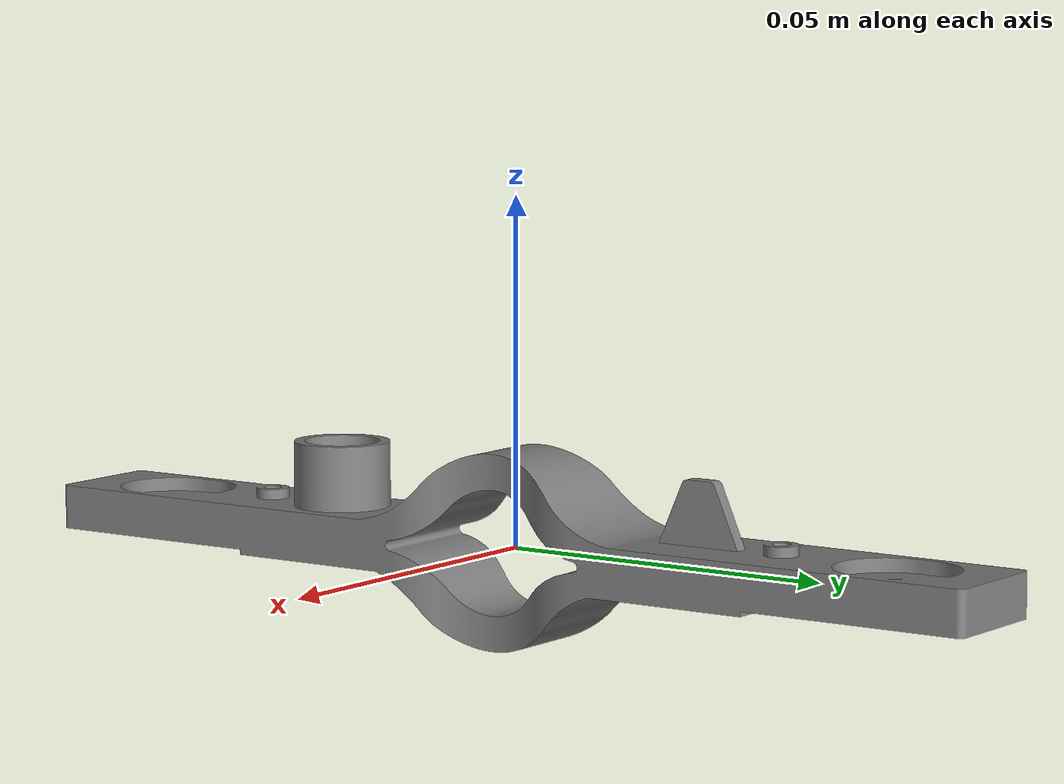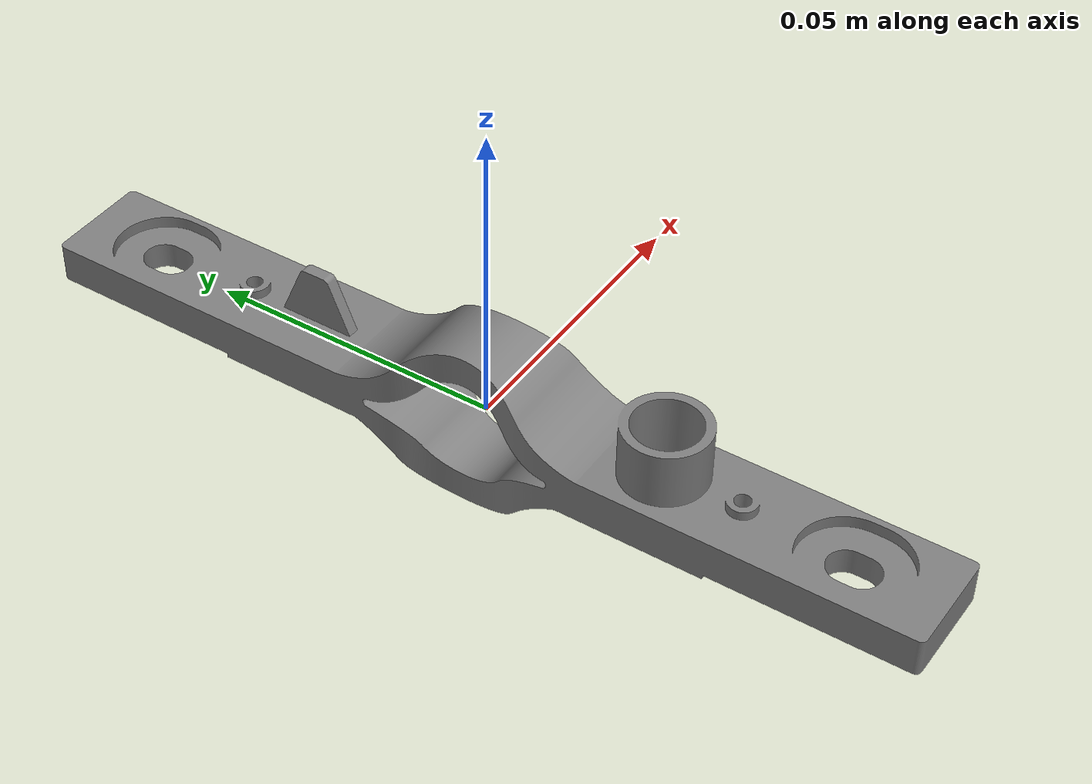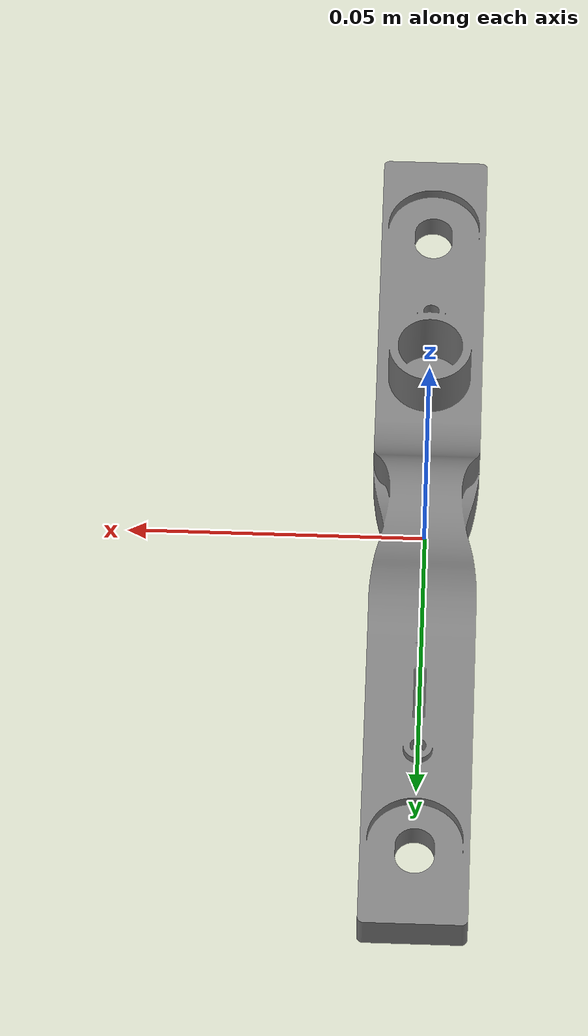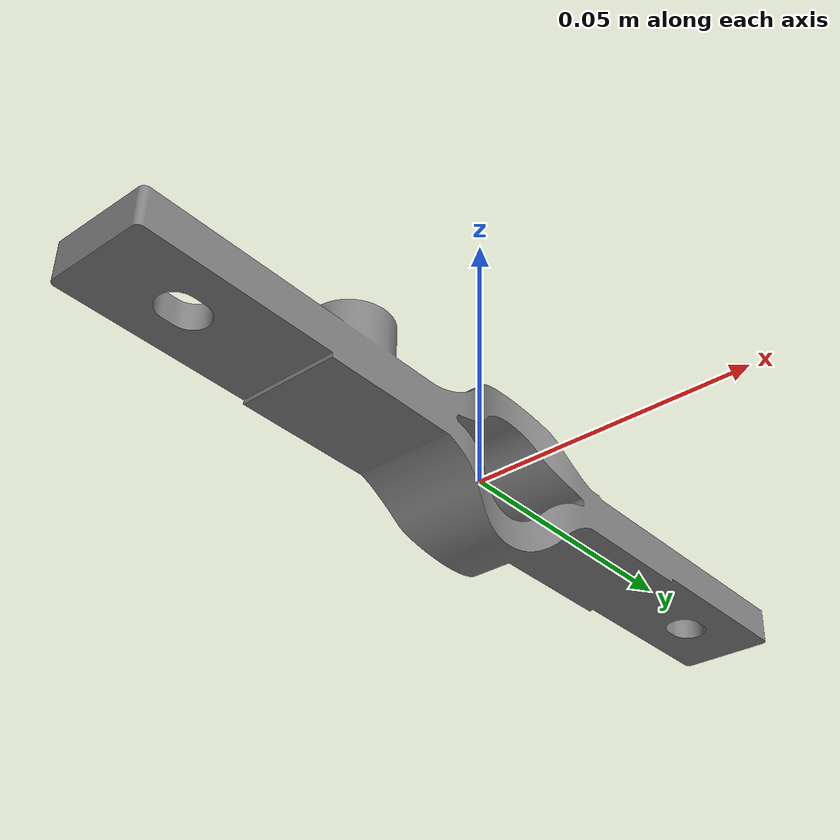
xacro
<?xml version="1.0"?>
<robot xmlns:xacro="http://www.ros.org/wiki/xacro" name="id4_batterypack">

  <!-- Materials -->
  <material name="gray">
    <color rgba="0.5 0.5 0.5 1"/>
  </material>

  <material name="light_gray">
    <color rgba="0.8 0.8 0.8 1"/>
  </material>

  <!-- Base links -->
  <link name="world"/>

  <link name="busbar_1">
    <visual>
      <geometry>
        <mesh filename="package://id4_batterypack_description/meshes/busbar_2_fix.stl"
              scale="1 1 1"/>
      </geometry>
      <origin xyz="0 0 0" rpy="0 0 0"/>
      <material name="gray"/>
    </visual>
    <collision>
      <geometry>
        <mesh filename="package://id4_batterypack_description/meshes/busbar_2_fix.stl"
              scale="1 1 1"/>
      </geometry>
      <origin xyz="0 0 0" rpy="0 0 0"/>
    </collision>
  </link>

  <joint name="world_to_busbar" type="fixed">
    <parent link="world"/>
    <child link="busbar_1"/>
    <origin xyz="0 0 0" rpy="0 0 0"/>
  </joint>
</robot>
